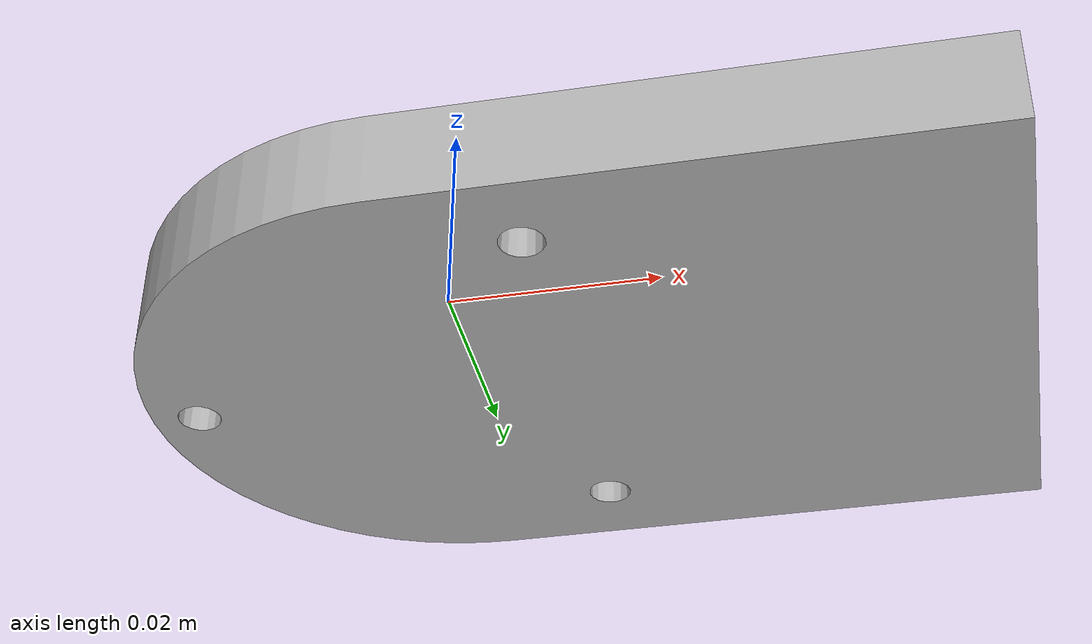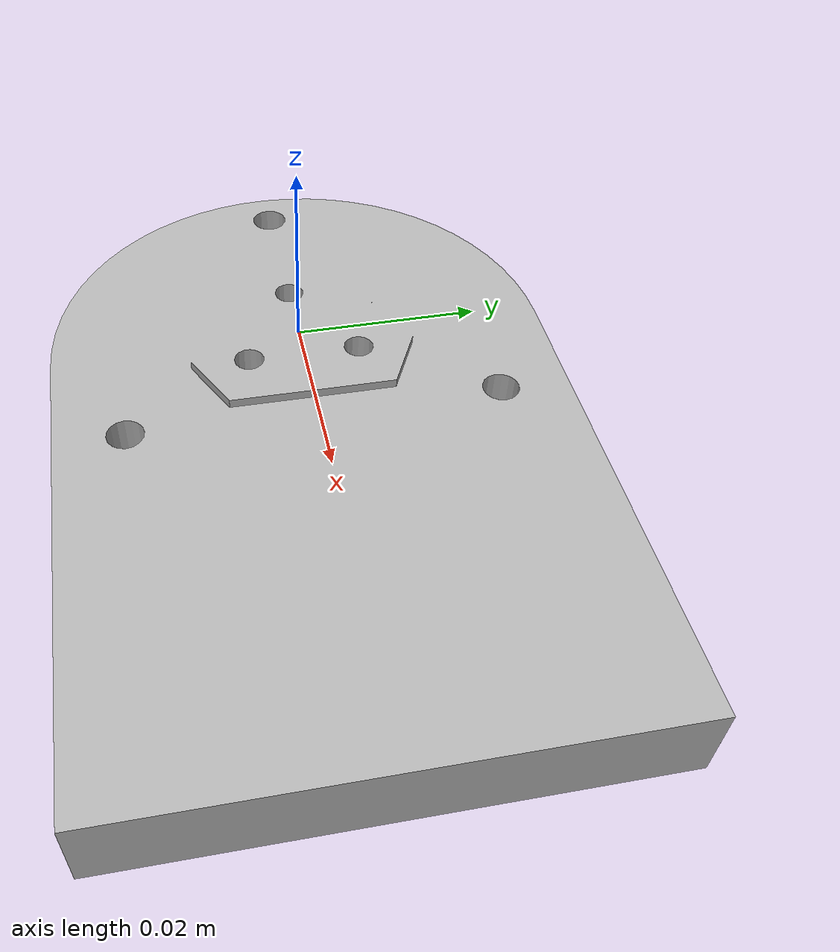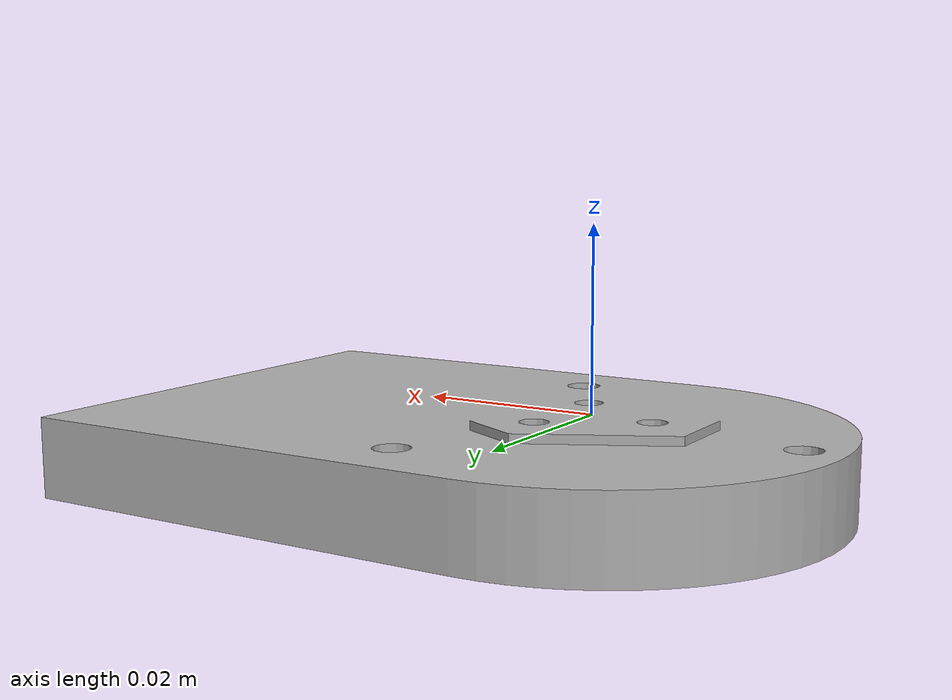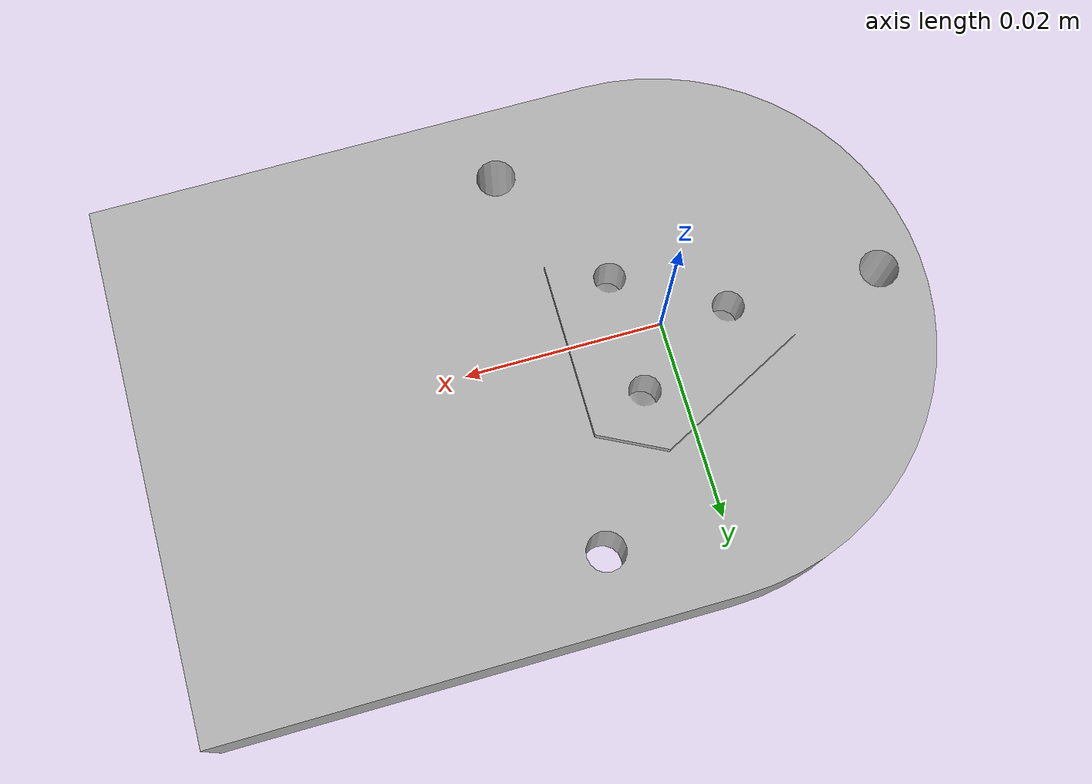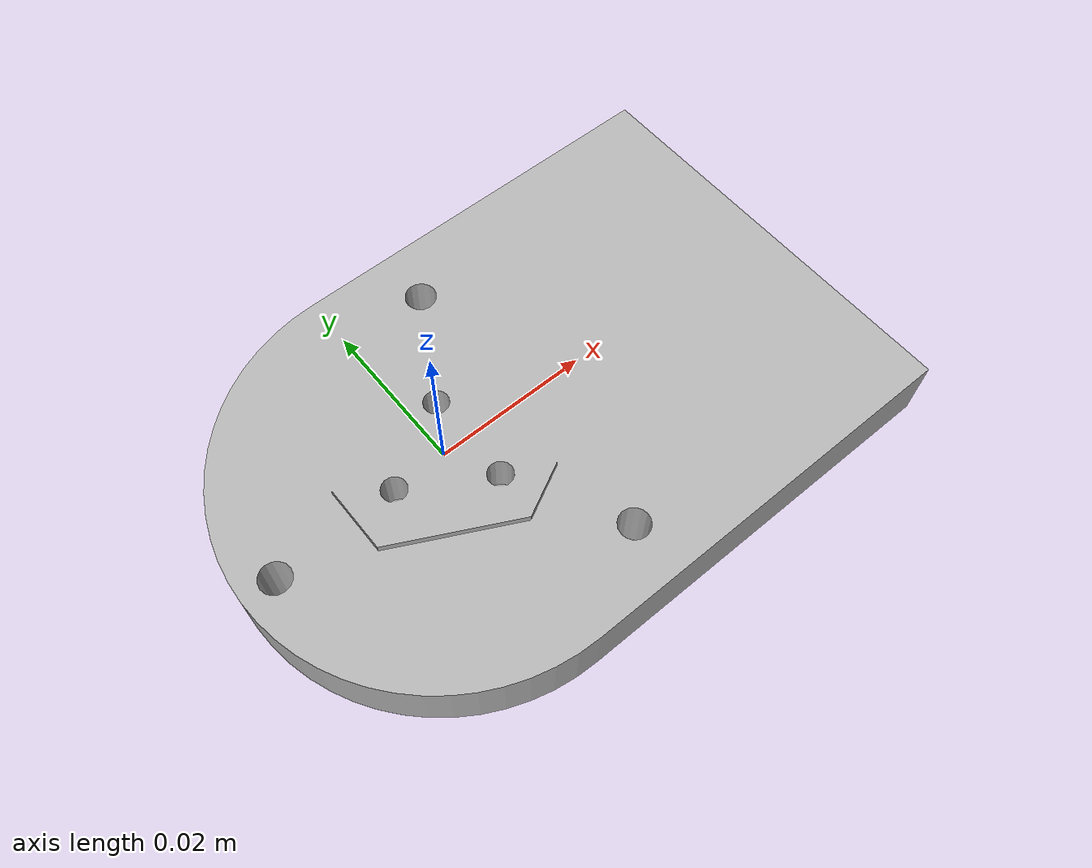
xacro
<?xml version="1.0"?>
<robot name="FFS055YA501U6" xmlns:xacro="http://www.ros.org/wiki/xacro">

    <joint name="leptrino_joint" type="fixed">
        <origin xyz="0 0 0" rpy="0 0 0" />
        <parent link="base_link" />
        <child link="leptrino" />
    </joint>

    <link name="base_link" />
    <link name="leptrino">
        <visual>
            <origin xyz="0 0 -0.01" rpy="1.57079 0 0" />
            <geometry>
                <mesh filename="package://leptrino_force_torque/meshes/FFS055YA501U6.stl" />
            </geometry>
            <material name="grey">
                <color rgba="0.7 0.7 0.7 1.0" />
            </material>
        </visual>
    </link>

</robot>
